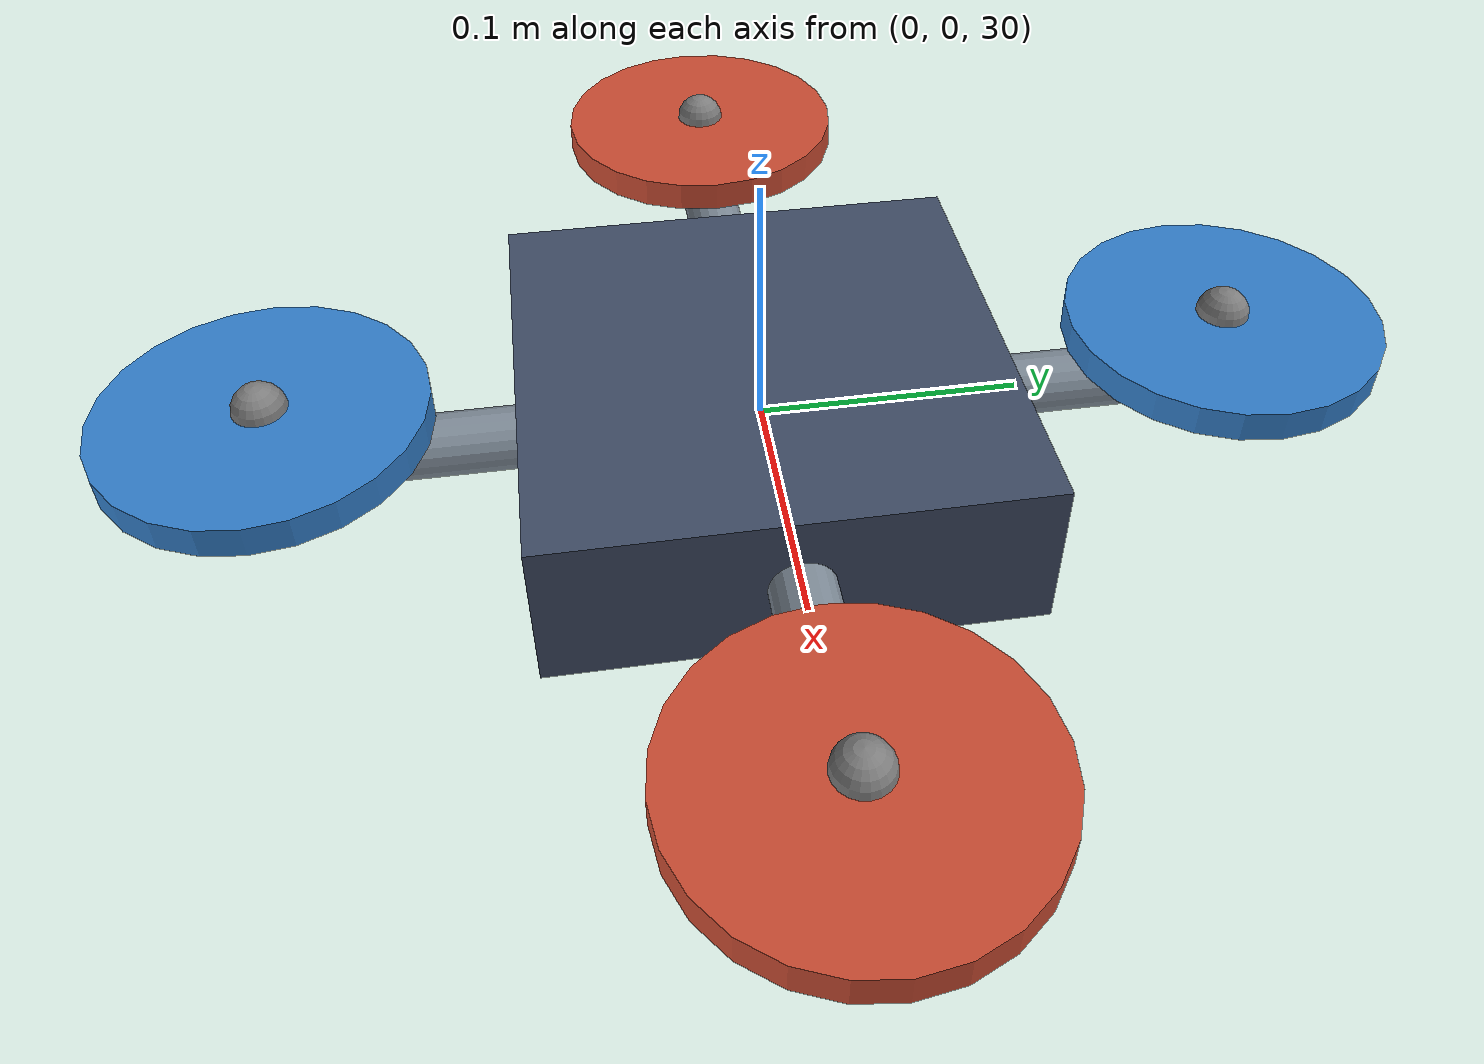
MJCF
<mujoco model="target_drone">
  <statistic extent="40" center="0 0 30"/>

  <visual>
    <global azimuth="90" elevation="-10"/>
    <rgba haze="0.15 0.25 0.35 1"/>
    <map zfar="400"/>
    <quality shadowsize="4096"/>
  </visual>

  <asset>
    <texture type="skybox" builtin="gradient" rgb1="0.3 0.5 0.7" rgb2="0 0 0" width="64" height="64"/>
    <texture name="grid" type="2d" builtin="checker" rgb1=".2 .3 .4" rgb2=".1 .15 .2"
             width="512" height="512" mark="cross" markrgb=".8 .8 .8"/>
    <material name="grid" texture="grid" texrepeat="40 40" reflectance="0.2"/>
  </asset>

  <!-- density+viscosity activate MuJoCo's default inertia-box fluid model (drag) on every body -->
  <option density="1.225" viscosity="1.8e-5" gravity="0 0 -9.81"
          integrator="implicitfast" timestep="0.002"/>

  <default>
    <geom rgba=".5 .55 .6 1"/>
  </default>

  <worldbody>
    <light pos="0 -20 60" dir="0 0.3 -1" diffuse="1 1 1"/>
    <geom name="ground" type="plane" pos="0 0 0" size="0 0 .1" material="grid" condim="3"/>

    <!-- quad: "+" layout, arms along +/-x and +/-y. Body frame == rotor-site frame. -->
    <body name="target" pos="0 0 30">
      <freejoint/>

      <!-- central body -->
      <geom name="core" type="box" size="0.09 0.09 0.03" mass="0.6" rgba=".25 .3 .4 1"/>

      <!-- arms (capsules from center out to each rotor) -->
      <geom name="arm_px" type="capsule" fromto="0 0 0  0.18 0 0" size="0.012" mass="0.05"/>
      <geom name="arm_nx" type="capsule" fromto="0 0 0 -0.18 0 0" size="0.012" mass="0.05"/>
      <geom name="arm_py" type="capsule" fromto="0 0 0  0 0.18 0" size="0.012" mass="0.05"/>
      <geom name="arm_ny" type="capsule" fromto="0 0 0  0 -0.18 0" size="0.012" mass="0.05"/>

      <!-- rotor pods (the disks); mass here dominates roll/pitch inertia -->
      <geom name="rot_px" type="cylinder" pos=" 0.18 0 0.02" size="0.06 0.006" mass="0.1" rgba=".8 .3 .2 1"/>
      <geom name="rot_nx" type="cylinder" pos="-0.18 0 0.02" size="0.06 0.006" mass="0.1" rgba=".8 .3 .2 1"/>
      <geom name="rot_py" type="cylinder" pos=" 0 0.18 0.02" size="0.06 0.006" mass="0.1" rgba=".2 .5 .8 1"/>
      <geom name="rot_ny" type="cylinder" pos=" 0 -0.18 0.02" size="0.06 0.006" mass="0.1" rgba=".2 .5 .8 1"/>

      <!-- thrust sites at the rotor tops; NO orientation => site frame == body frame -->
      <site name="thr_px" pos=" 0.18 0 0.026" size="0.01"/>
      <site name="thr_nx" pos="-0.18 0 0.026" size="0.01"/>
      <site name="thr_py" pos=" 0 0.18 0.026" size="0.01"/>
      <site name="thr_ny" pos=" 0 -0.18 0.026" size="0.01"/>
    </body>
  </worldbody>

  <actuator>
    <!-- each applies force along the body-z axis (tilts with the drone) -->
    <general name="m_px" site="thr_px" gear="0 0 1 0 0 0" ctrllimited="true" ctrlrange="0 20"/>
    <general name="m_nx" site="thr_nx" gear="0 0 1 0 0 0" ctrllimited="true" ctrlrange="0 20"/>
    <general name="m_py" site="thr_py" gear="0 0 1 0 0 0" ctrllimited="true" ctrlrange="0 20"/>
    <general name="m_ny" site="thr_ny" gear="0 0 1 0 0 0" ctrllimited="true" ctrlrange="0 20"/>
  </actuator>

  <keyframe>
    <!-- nominal trim fallback; the harness overwrites with the solved trim at launch.
         q(y,-5deg) = [cos(2.5d), 0, sin(-2.5d), 0] = [0.99905, 0, -0.04362, 0] -->
    <key name="cruise"
         qpos="0 0 30  0.99905 0 -0.04362 0"
         qvel="15 0 0  0 0 0"
         ctrl="3.0 3.0 3.0 3.0"/>
  </keyframe>
</mujoco>
